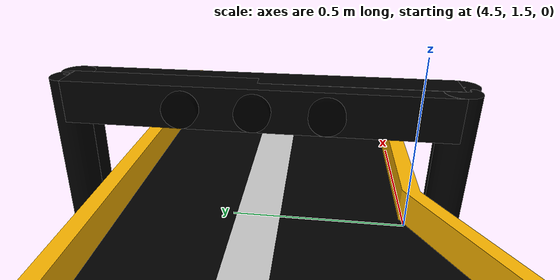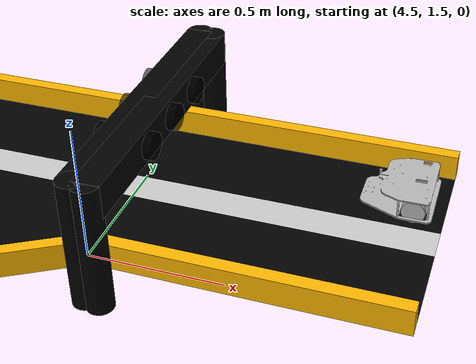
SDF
<sdf version="1.7">
 <world name="default">
  <gravity>0 0 -9.8</gravity>
  <magnetic_field>6e-06 2.3e-05 -4.2e-05</magnetic_field>
  <atmosphere type="adiabatic"/>
  <physics type="ode">
   <max_step_size>0.001</max_step_size>
   <real_time_factor>1</real_time_factor>
   <real_time_update_rate>1000</real_time_update_rate>
  </physics>
  <scene><ambient>0.4 0.4 0.4 1</ambient><background>0.7 0.7 0.7 1</background><shadows>0</shadows></scene>
  <spherical_coordinates>
   <surface_model>EARTH_WGS84</surface_model>
   <latitude_deg>0</latitude_deg>
   <longitude_deg>0</longitude_deg>
   <elevation>0</elevation>
   <heading_deg>0</heading_deg>
  </spherical_coordinates>
  <light name="sun" type="directional">
   <pose>0 0 10 0 -0 0</pose>
   <diffuse>0.8 0.8 0.8 1</diffuse>
   <specular>0.2 0.2 0.2 1</specular>
   <attenuation>
    <range>1000</range>
    <constant>0.9</constant>
    <linear>0.01</linear>
    <quadratic>0.001</quadratic>
   </attenuation>
   <direction>-0.5 0.1 -0.9</direction>
   <spot><inner_angle>0</inner_angle><outer_angle>0</outer_angle><falloff>0</falloff></spot>
  </light>
  <model name="ttfestcar">
   <pose>5.5224 2.1454 3e-06 6.4e-05 0 -1.55421</pose>
   <plugin name="diff_drive" filename="libgazebo_ros_diff_drive.so">
    <left_joint>left_wheel_joint</left_joint>
    <right_joint>right_wheel_joint</right_joint>
    <wheel_separation>0.182</wheel_separation>
    <wheel_diameter>0.088</wheel_diameter>
    <command_topic>cmd_vel</command_topic>
    <publish_odom>1</publish_odom>
    <publish_odom_tf>1</publish_odom_tf>
    <publish_wheel_tf>0</publish_wheel_tf>
    <odometry_topic>odom</odometry_topic>
   </plugin>
   <link name="chassis">
    <pose>0 0 0.022 0 -0 0</pose>
    <inertial>
     <mass>10</mass>
     <inertia>
      <ixx>0.0679365</ixx>
      <ixy>0</ixy>
      <ixz>0</ixz>
      <iyy>0.132214</iyy>
      <iyz>0</iyz>
      <izz>0.0749439</izz>
     </inertia>
    </inertial>
    <inertial><mass>10</mass><auto>1</auto></inertial>
    <visual name="visual">
     <geometry><mesh><uri>model://ttfestcar/meshes/rascar.dae</uri></mesh></geometry>
    </visual>
    <collision name="collision">
     <geometry><mesh><uri>model://ttfestcar/meshes/rascar.dae</uri></mesh></geometry>
    </collision>
   </link>
   <link name="left_wheel">
    <pose relative_to="chassis">-0.106 0 0.022 0 1.57 0</pose>
    <inertial>
     <mass>10</mass>
     <inertia><ixx>0.0016</ixx><ixy>0</ixy><ixz>0</ixz><iyy>0.0016</iyy><iyz>0</iyz><izz>0.00088</izz></inertia>
    </inertial>
    <visual name="visual">
     <geometry><cylinder><radius>0.044</radius><length>0.03</length></cylinder></geometry>
    </visual>
    <collision name="collision">
     <geometry><cylinder><radius>0.044</radius><length>0.03</length></cylinder></geometry>
    </collision>
   </link>
   <link name="right_wheel">
    <pose relative_to="chassis">0.106 0 0.022 0 1.57 0</pose>
    <inertial>
     <mass>10</mass>
     <inertia><ixx>0.0016</ixx><ixy>0</ixy><ixz>0</ixz><iyy>0.0016</iyy><iyz>0</iyz><izz>0.00088</izz></inertia>
    </inertial>
    <visual name="visual">
     <geometry><cylinder><radius>0.044</radius><length>0.03</length></cylinder></geometry>
    </visual>
    <collision name="collision">
     <geometry><cylinder><radius>0.044</radius><length>0.03</length></cylinder></geometry>
    </collision>
   </link>
   <link name="caster_wheel">
    <pose relative_to="chassis">0 -0.1765 -0.011 0 -0 0</pose>
    <inertial>
     <mass>5</mass>
     <inertia>
      <ixx>0.000242</ixx>
      <iyy>0.000242</iyy>
      <izz>0.000242</izz>
      <ixy>0</ixy>
      <ixz>0</ixz>
      <iyz>0</iyz>
     </inertia>
    </inertial>
    <visual name="visual"><geometry><sphere><radius>0.011</radius></sphere></geometry></visual>
    <collision name="collision"><geometry><sphere><radius>0.011</radius></sphere></geometry></collision>
   </link>
   <joint name="left_wheel_joint" type="revolute">
    <parent>chassis</parent>
    <child>left_wheel</child>
    <axis>
     <xyz expressed_in="__model__">1 0 0</xyz>
     <limit><lower>-1.79769e+308</lower><upper>1.79769e+308</upper></limit>
     <dynamics>
      <friction>12.0316</friction>
      <spring_reference>0</spring_reference>
      <spring_stiffness>0</spring_stiffness>
     </dynamics>
    </axis>
   </joint>
   <joint name="right_wheel_joint" type="revolute">
    <parent>chassis</parent>
    <child>right_wheel</child>
    <axis>
     <xyz expressed_in="__model__">1 0 0</xyz>
     <limit><lower>-1.79769e+308</lower><upper>1.79769e+308</upper></limit>
     <dynamics>
      <friction>12.0316</friction>
      <spring_reference>0</spring_reference>
      <spring_stiffness>0</spring_stiffness>
     </dynamics>
    </axis>
   </joint>
   <joint name="caster_wheel_joint" type="ball">
    <parent>chassis</parent>
    <child>caster_wheel</child>
    <dynamics><friction>12.031606150200002</friction></dynamics>
   </joint>
   <link name="camera_link">
    <pose relative_to="chassis">0 -0.144 0.0975 0 0 -1.57</pose>
    <inertial>
     <mass>0.1</mass>
     <inertia>
      <ixx>0.000166667</ixx>
      <iyy>0.000166667</iyy>
      <izz>0.000166667</izz>
      <ixy>0</ixy>
      <ixz>0</ixz>
      <iyz>0</iyz>
     </inertia>
    </inertial>
    <visual name="visual"><geometry><box><size>0.01 0.01 0.01</size></box></geometry></visual>
    <collision name="collision"><geometry><box><size>0.1 0.1 0.1</size></box></geometry></collision>
    <sensor name="camera" type="camera">
     <camera>
      <horizontal_fov>1.08559</horizontal_fov>
      <image><width>829</width><height>621</height></image>
      <clip><near>0.1</near><far>100</far></clip>
     </camera>
     <plugin name="camera_controller" filename="libgazebo_ros_camera.so">
      <always_on>1</always_on>
      <update_rate>30</update_rate>
      <cameraName>/camera</cameraName>
      <imageTopicName>image_raw</imageTopicName>
      <cameraInfoTopicName>camera_info</cameraInfoTopicName>
      <frameName>camera</frameName>
     </plugin>
    </sensor>
   </link>
   <joint name="camera_joint" type="fixed">
    <pose relative_to="camera_link">0 0 0 0 -0 0</pose>
    <parent>chassis</parent>
    <child>camera_link</child>
   </joint>
   <link name="hokuyo_link">
    <sensor name="head_hokuyo_sensor" type="ray">
     <always_on>1</always_on>
     <visualize>0</visualize>
     <pose relative_to="chassis">0 -0.155 0.054 0 -0 0</pose>
     <update_rate>100</update_rate>
     <ray>
      <scan>
       <horizontal>
        <samples>2000</samples>
        <resolution>0.2</resolution>
        <min_angle>-3.14</min_angle>
        <max_angle>3.14</max_angle>
       </horizontal>
       <vertical><samples>1</samples><min_angle>0</min_angle><max_angle>0</max_angle></vertical>
      </scan>
      <range><min>0.15</min><max>6</max><resolution>0.5</resolution></range>
     </ray>
     <plugin name="gazebo_ros_head_hokuyo_controller" filename="libgazebo_ros_ray_sensor.so">
      <ros><namespace>/lidar</namespace><remapping>~/out:=data</remapping></ros>
      <output_type>sensor_msgs/LaserScan</output_type>
      <frameName>hokuyo_link</frameName>
     </plugin>
    </sensor>
    <inertial>
     <inertia><ixx>1</ixx><ixy>0</ixy><ixz>0</ixz><iyy>1</iyy><iyz>0</iyz><izz>1</izz></inertia>
     <mass>1</mass>
    </inertial>
   </link>
   <joint name="hokuyo_joint" type="fixed"><parent>chassis</parent><child>hokuyo_link</child></joint>
  </model>
  <light name="user_directional_light_0" type="directional">
   <pose>1.00186 -0.958533 1 0 -0 0</pose>
   <diffuse>0.5 0.5 0.5 1</diffuse>
   <specular>0.1 0.1 0.1 1</specular>
   <direction>0.1 0.1 -0.9</direction>
   <attenuation>
    <range>20</range>
    <constant>0.5</constant>
    <linear>0.01</linear>
    <quadratic>0.001</quadratic>
   </attenuation>
   <spot><inner_angle>0</inner_angle><outer_angle>0</outer_angle><falloff>0</falloff></spot>
  </light>
  <light name="user_directional_light_1" type="directional">
   <pose>-0.824597 -1.29851 1 0 -0 0</pose>
   <diffuse>0.5 0.5 0.5 1</diffuse>
   <specular>0.1 0.1 0.1 1</specular>
   <direction>0.1 0.1 -0.9</direction>
   <attenuation>
    <range>20</range>
    <constant>0.5</constant>
    <linear>0.01</linear>
    <quadratic>0.001</quadratic>
   </attenuation>
   <spot><inner_angle>0</inner_angle><outer_angle>0</outer_angle><falloff>0</falloff></spot>
  </light>
  <light name="user_directional_light_2" type="directional">
   <pose>-0.482094 -1.05082 1 0 -0 0</pose>
   <diffuse>0.5 0.5 0.5 1</diffuse>
   <specular>0.1 0.1 0.1 1</specular>
   <direction>0.1 0.1 -0.9</direction>
   <attenuation>
    <range>20</range>
    <constant>0.5</constant>
    <linear>0.01</linear>
    <quadratic>0.001</quadratic>
   </attenuation>
   <spot><inner_angle>0</inner_angle><outer_angle>0</outer_angle><falloff>0</falloff></spot>
  </light>
  <light name="user_directional_light_3" type="directional">
   <pose>-0.490253 -1.08654 1 0 -0 0</pose>
   <diffuse>0.5 0.5 0.5 1</diffuse>
   <specular>0.1 0.1 0.1 1</specular>
   <direction>0.1 0.1 -0.9</direction>
   <attenuation>
    <range>20</range>
    <constant>0.5</constant>
    <linear>0.01</linear>
    <quadratic>0.001</quadratic>
   </attenuation>
   <spot><inner_angle>0</inner_angle><outer_angle>0</outer_angle><falloff>0</falloff></spot>
  </light>
  <model name="TtfestRoad">
   <static>1</static>
   <link name="link">
    <collision name="collision">
     <geometry><mesh><uri>model://ttfestroad/meshes/road.dae</uri><scale>1 1 1</scale></mesh></geometry>
    </collision>
    <visual name="visual">
     <geometry><mesh><uri>model://ttfestroad/meshes/road.dae</uri><scale>1 1 1</scale></mesh></geometry>
    </visual>
   </link>
   <pose>1.02256 -2.60892 0 0 -0 0</pose>
  </model>
  <model name="ttfest_traffic_light_1">
   <static>1</static>
   <link name="base_1">
    <visual name="visual">
     <pose>0 0 0.15 0 -0 0</pose>
     <geometry><cylinder><radius>0.05</radius><length>0.5</length></cylinder></geometry>
     <material><ambient>0.5 0.5 0.5 1</ambient><diffuse>0 0 0 1</diffuse><specular>0 0 0 1</specular></material>
    </visual>
    <collision name="collision">
     <pose>0 0 3.275 0 -0 0</pose>
     <geometry><cylinder><radius>0.05</radius><length>0.5</length></cylinder></geometry>
    </collision>
   </link>
   <link name="base_2">
    <visual name="visual">
     <pose>0 -1.1 0.15 0 -0 0</pose>
     <geometry><cylinder><radius>0.05</radius><length>0.5</length></cylinder></geometry>
     <material><ambient>0.5 0.5 0.5 1</ambient><diffuse>0 0 0 1</diffuse><specular>0 0 0 1</specular></material>
    </visual>
    <collision name="collision">
     <pose>0 0 3.275 0 -0 0</pose>
     <geometry><cylinder><radius>0.05</radius><length>0.5</length></cylinder></geometry>
    </collision>
   </link>
   <link name="base_3">
    <visual name="visual">
     <pose>0 -0.55 0.3375 1.57 -0 0</pose>
     <geometry><box><size>0.1 0.125 1.1</size></box></geometry>
     <material><ambient>0.5 0.5 0.5 1</ambient><diffuse>0 0 0 1</diffuse><specular>0 0 0 1</specular></material>
    </visual>
    <collision name="collision">
     <pose>0 0 3.275 0 -0 0</pose>
     <geometry><cylinder><radius>0.05</radius><length>1.1</length></cylinder></geometry>
    </collision>
   </link>
   <link name="red_light_1">
    <gravity>0</gravity>
    <pose>0.055 -0.55 0.3375 0 1.5707 0</pose>
    <collision name="collision">
     <geometry><cylinder><radius>0.05</radius><length>0.05</length></cylinder></geometry>
    </collision>
    <visual name="red">
     <geometry><cylinder><radius>0.05</radius><length>0.05</length></cylinder></geometry>
     <transparency>0.4</transparency>
     <material>
      <ambient>1 0 0 1</ambient>
      <diffuse>0 0 0 1</diffuse>
      <specular>0 0 0 1</specular>
      <emissive>0 0 0 1</emissive>
     </material>
    </visual>
    <light name="red" type="spot">
     <pose>0 0 0 3.14159 3e-06 3.14159</pose>
     <attenuation><range>1</range><linear>0.05</linear></attenuation>
     <diffuse>0 0 0 1</diffuse>
     <specular>0 0 0 1</specular>
     <spot><inner_angle>0.3</inner_angle><outer_angle>0.35</outer_angle><falloff>1</falloff></spot>
     <direction>0 0 -1</direction>
    </light>
   </link>
   <link name="red_light_3">
    <gravity>0</gravity>
    <pose>0.055 -0.75 0.3375 0 1.5707 0</pose>
    <collision name="collision">
     <geometry><cylinder><radius>0.05</radius><length>0.05</length></cylinder></geometry>
    </collision>
    <visual name="red">
     <geometry><cylinder><radius>0.05</radius><length>0.05</length></cylinder></geometry>
     <transparency>0.4</transparency>
     <material>
      <ambient>1 0 0 1</ambient>
      <diffuse>0 0 0 1</diffuse>
      <specular>0 0 0 1</specular>
      <emissive>0 0 0 1</emissive>
     </material>
    </visual>
    <light name="red" type="spot">
     <pose>0 0 0 3.14159 3e-06 3.14159</pose>
     <attenuation><range>1</range><linear>0.05</linear></attenuation>
     <diffuse>0 0 0 1</diffuse>
     <specular>0 0 0 1</specular>
     <spot><inner_angle>0.3</inner_angle><outer_angle>0.35</outer_angle><falloff>1</falloff></spot>
     <direction>0 0 -1</direction>
    </light>
   </link>
   <link name="red_light_2">
    <gravity>0</gravity>
    <pose>0.055 -0.35 0.3375 0 1.5707 0</pose>
    <collision name="collision">
     <geometry><cylinder><radius>0.05</radius><length>0.05</length></cylinder></geometry>
    </collision>
    <visual name="red">
     <geometry><cylinder><radius>0.05</radius><length>0.05</length></cylinder></geometry>
     <transparency>0.4</transparency>
     <material>
      <ambient>1 0 0 1</ambient>
      <diffuse>0 0 0 1</diffuse>
      <specular>0 0 0 1</specular>
      <emissive>0 0 0 1</emissive>
     </material>
    </visual>
    <light name="red" type="spot">
     <pose>0 0 0 3.14159 3e-06 3.14159</pose>
     <attenuation><range>1</range><linear>0.05</linear></attenuation>
     <diffuse>0 0 0 1</diffuse>
     <specular>0 0 0 1</specular>
     <spot><inner_angle>0.3</inner_angle><outer_angle>0.35</outer_angle><falloff>1</falloff></spot>
     <direction>0 0 -1</direction>
    </light>
   </link>
   <plugin name="light_control" filename="libLedPlugin.so">
    <enable>1</enable>
    <light><id>red_light_1/red</id><duration>4</duration><interval>4</interval><color>1 0 0</color></light>
    <light><id>red_light_2/red</id><duration>4</duration><interval>4</interval><color>1 0 0</color></light>
    <light><id>red_light_3/red</id><duration>4</duration><interval>4</interval><color>1 0 0</color></light>
   </plugin>
   <pose>4.5965 2.48238 0 0 -0 0</pose>
  </model>
  <model name="ttfest_traffic_light">
   <static>1</static>
   <link name="base_1">
    <visual name="visual">
     <pose>0 0 0.15 0 -0 0</pose>
     <geometry><cylinder><radius>0.05</radius><length>0.5</length></cylinder></geometry>
     <material><ambient>0.5 0.5 0.5 1</ambient><diffuse>0 0 0 1</diffuse><specular>0 0 0 1</specular></material>
    </visual>
    <collision name="collision">
     <pose>0 0 3.275 0 -0 0</pose>
     <geometry><cylinder><radius>0.05</radius><length>0.5</length></cylinder></geometry>
    </collision>
   </link>
   <link name="base_2">
    <visual name="visual">
     <pose>0 -1.1 0.15 0 -0 0</pose>
     <geometry><cylinder><radius>0.05</radius><length>0.5</length></cylinder></geometry>
     <material><ambient>0.5 0.5 0.5 1</ambient><diffuse>0 0 0 1</diffuse><specular>0 0 0 1</specular></material>
    </visual>
    <collision name="collision">
     <pose>0 0 3.275 0 -0 0</pose>
     <geometry><cylinder><radius>0.05</radius><length>0.5</length></cylinder></geometry>
    </collision>
   </link>
   <link name="base_3">
    <visual name="visual">
     <pose>0 -0.55 0.3375 1.57 -0 0</pose>
     <geometry><box><size>0.1 0.125 1.1</size></box></geometry>
     <material><ambient>0.5 0.5 0.5 1</ambient><diffuse>0 0 0 1</diffuse><specular>0 0 0 1</specular></material>
    </visual>
    <collision name="collision">
     <pose>0 0 3.275 0 -0 0</pose>
     <geometry><cylinder><radius>0.05</radius><length>1.1</length></cylinder></geometry>
    </collision>
   </link>
   <link name="red_light_1">
    <gravity>0</gravity>
    <pose>0.055 -0.55 0.3375 0 1.5707 0</pose>
    <collision name="collision">
     <geometry><cylinder><radius>0.05</radius><length>0.05</length></cylinder></geometry>
    </collision>
    <visual name="red">
     <geometry><cylinder><radius>0.05</radius><length>0.05</length></cylinder></geometry>
     <transparency>0.4</transparency>
     <material>
      <ambient>1 0 0 1</ambient>
      <diffuse>0 0 0 1</diffuse>
      <specular>0 0 0 1</specular>
      <emissive>0 0 0 1</emissive>
     </material>
    </visual>
    <light name="red" type="spot">
     <pose>0 0 0 3.14159 3e-06 3.14159</pose>
     <attenuation><range>1</range><linear>0.05</linear></attenuation>
     <diffuse>0 0 0 1</diffuse>
     <specular>0 0 0 1</specular>
     <spot><inner_angle>0.3</inner_angle><outer_angle>0.35</outer_angle><falloff>1</falloff></spot>
     <direction>0 0 -1</direction>
    </light>
   </link>
   <link name="red_light_3">
    <gravity>0</gravity>
    <pose>0.055 -0.75 0.3375 0 1.5707 0</pose>
    <collision name="collision">
     <geometry><cylinder><radius>0.05</radius><length>0.05</length></cylinder></geometry>
    </collision>
    <visual name="red">
     <geometry><cylinder><radius>0.05</radius><length>0.05</length></cylinder></geometry>
     <transparency>0.4</transparency>
     <material>
      <ambient>1 0 0 1</ambient>
      <diffuse>0 0 0 1</diffuse>
      <specular>0 0 0 1</specular>
      <emissive>0 0 0 1</emissive>
     </material>
    </visual>
    <light name="red" type="spot">
     <pose>0 0 0 3.14159 3e-06 3.14159</pose>
     <attenuation><range>1</range><linear>0.05</linear></attenuation>
     <diffuse>0 0 0 1</diffuse>
     <specular>0 0 0 1</specular>
     <spot><inner_angle>0.3</inner_angle><outer_angle>0.35</outer_angle><falloff>1</falloff></spot>
     <direction>0 0 -1</direction>
    </light>
   </link>
   <link name="red_light_2">
    <gravity>0</gravity>
    <pose>0.055 -0.35 0.3375 0 1.5707 0</pose>
    <collision name="collision">
     <geometry><cylinder><radius>0.05</radius><length>0.05</length></cylinder></geometry>
    </collision>
    <visual name="red">
     <geometry><cylinder><radius>0.05</radius><length>0.05</length></cylinder></geometry>
     <transparency>0.4</transparency>
     <material>
      <ambient>1 0 0 1</ambient>
      <diffuse>0 0 0 1</diffuse>
      <specular>0 0 0 1</specular>
      <emissive>0 0 0 1</emissive>
     </material>
    </visual>
    <light name="red" type="spot">
     <pose>0 0 0 3.14159 3e-06 3.14159</pose>
     <attenuation><range>1</range><linear>0.05</linear></attenuation>
     <diffuse>0 0 0 1</diffuse>
     <specular>0 0 0 1</specular>
     <spot><inner_angle>0.3</inner_angle><outer_angle>0.35</outer_angle><falloff>1</falloff></spot>
     <direction>0 0 -1</direction>
    </light>
   </link>
   <plugin name="light_control" filename="libLedPlugin.so">
    <enable>1</enable>
    <light><id>red_light_1/red</id><duration>4</duration><interval>4</interval><color>1 0 0</color></light>
    <light><id>red_light_2/red</id><duration>4</duration><interval>4</interval><color>1 0 0</color></light>
    <light><id>red_light_3/red</id><duration>4</duration><interval>4</interval><color>1 0 0</color></light>
   </plugin>
   <pose>4.54117 1.39045 0 0 -0 3.14159</pose>
  </model>
 </world>
</sdf>
